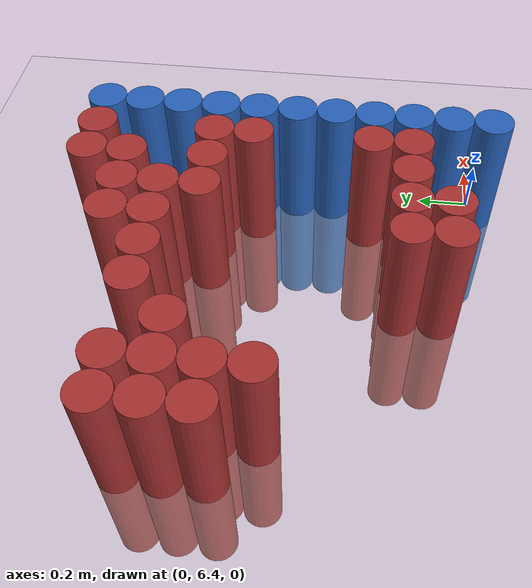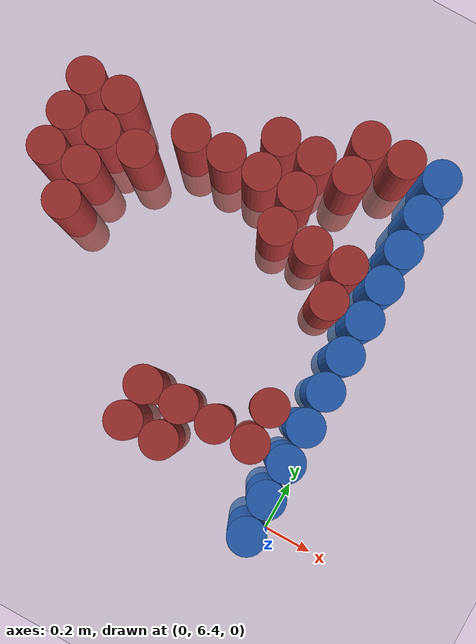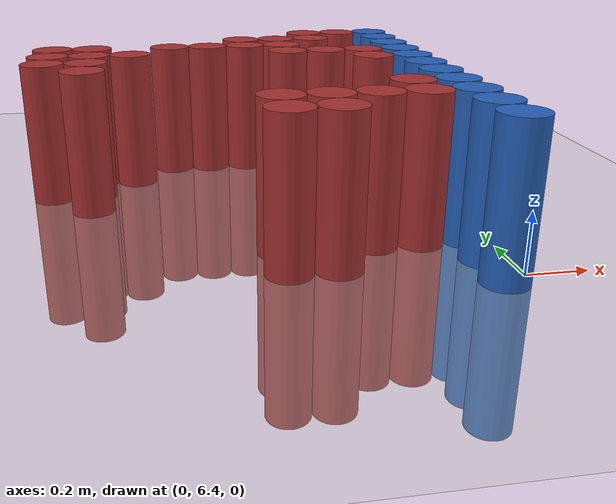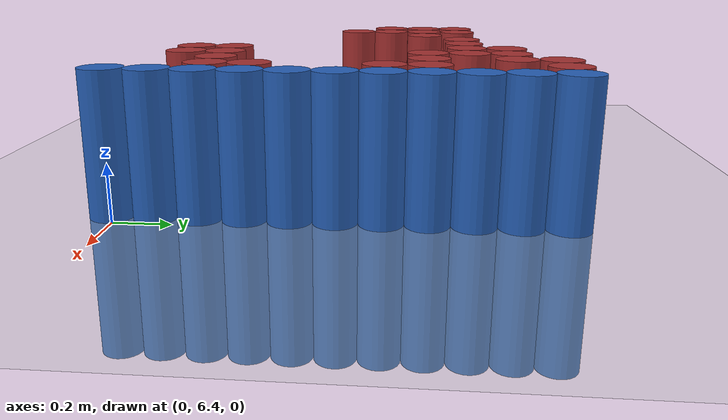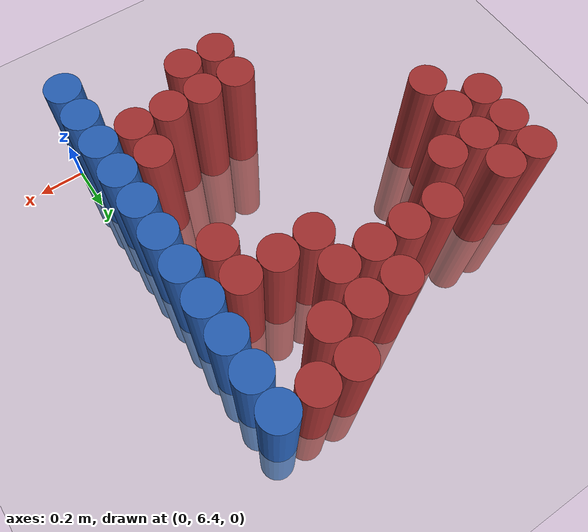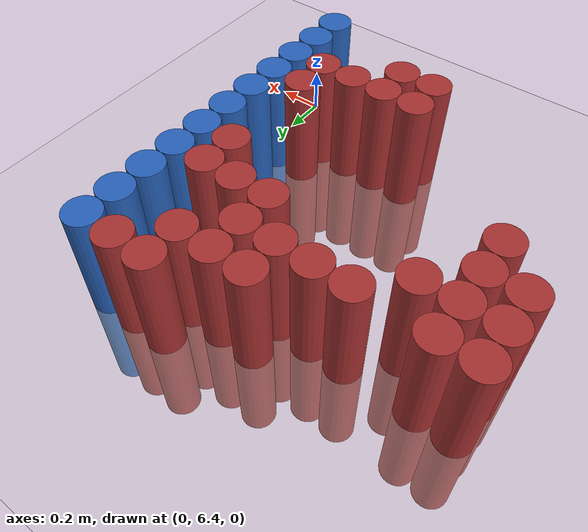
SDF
<sdf version="1.6">
 <world name="default">
  <model name="ground_plane">
   <static>1</static>
   <link name="link">
    <collision name="collision">
     <geometry><plane><normal>0 0 1</normal><size>100 100</size></plane></geometry>
     <surface><friction><ode><mu>100</mu><mu2>50</mu2></ode></friction></surface>
    </collision>
    <visual name="visual">
     <cast_shadows>0</cast_shadows>
     <geometry><plane><normal>0 0 1</normal><size>100 100</size></plane></geometry>
     <material>
      <script><uri>file://media/materials/scripts/gazebo.material</uri><name>Gazebo/Grey</name></script>
     </material>
    </visual>
   </link>
  </model>
  <model name="unit_cylinder_223">
   <static>1</static>
   <pose>-1.425000 7.275000 0.000000 0.000000 0.000000 0.000000</pose>
   <link name="link">
    <inertial>
     <mass>1</mass>
     <inertia><ixx>0.145833</ixx><ixy>0</ixy><ixz>0</ixz><iyy>0.145833</iyy><iyz>0</iyz><izz>0.125</izz></inertia>
    </inertial>
    <collision name="collision">
     <geometry><cylinder><radius>0.075000</radius><length>1</length></cylinder></geometry>
    </collision>
    <visual name="visual">
     <geometry><cylinder><radius>0.075000</radius><length>1</length></cylinder></geometry>
     <material>
      <ambient>0.648000 0.192000 0.192000 1</ambient>
      <diffuse>0.648000 0.192000 0.192000 1</diffuse>
     </material>
     <material>
      <script><name>Gazebo/Grey</name><uri>file://media/materials/scripts/gazebo.material</uri></script>
     </material>
    </visual>
    <sensor name="sensor_contact" type="contact"><contact><collision>collision</collision></contact></sensor>
   </link>
   <plugin filename="gz-sim-touchplugin-system" name="gz::sim::systems::TouchPlugin">
    <target>robot</target>
    <namespace>robot</namespace>
    <time>0.001</time>
    <enabled>true</enabled>
   </plugin>
  </model>
  <model name="unit_cylinder_224">
   <static>1</static>
   <pose>-1.425000 7.425000 0.000000 0.000000 0.000000 0.000000</pose>
   <link name="link">
    <inertial>
     <mass>1</mass>
     <inertia><ixx>0.145833</ixx><ixy>0</ixy><ixz>0</ixz><iyy>0.145833</iyy><iyz>0</iyz><izz>0.125</izz></inertia>
    </inertial>
    <collision name="collision">
     <geometry><cylinder><radius>0.075000</radius><length>1</length></cylinder></geometry>
    </collision>
    <visual name="visual">
     <geometry><cylinder><radius>0.075000</radius><length>1</length></cylinder></geometry>
     <material>
      <ambient>0.648000 0.192000 0.192000 1</ambient>
      <diffuse>0.648000 0.192000 0.192000 1</diffuse>
     </material>
     <material>
      <script><name>Gazebo/Grey</name><uri>file://media/materials/scripts/gazebo.material</uri></script>
     </material>
    </visual>
    <sensor name="sensor_contact" type="contact"><contact><collision>collision</collision></contact></sensor>
   </link>
   <plugin filename="gz-sim-touchplugin-system" name="gz::sim::systems::TouchPlugin">
    <target>robot</target>
    <namespace>robot</namespace>
    <time>0.001</time>
    <enabled>true</enabled>
   </plugin>
  </model>
  <model name="unit_cylinder_225">
   <static>1</static>
   <pose>-1.425000 7.575000 0.000000 0.000000 0.000000 0.000000</pose>
   <link name="link">
    <inertial>
     <mass>1</mass>
     <inertia><ixx>0.145833</ixx><ixy>0</ixy><ixz>0</ixz><iyy>0.145833</iyy><iyz>0</iyz><izz>0.125</izz></inertia>
    </inertial>
    <collision name="collision">
     <geometry><cylinder><radius>0.075000</radius><length>1</length></cylinder></geometry>
    </collision>
    <visual name="visual">
     <geometry><cylinder><radius>0.075000</radius><length>1</length></cylinder></geometry>
     <material>
      <ambient>0.648000 0.192000 0.192000 1</ambient>
      <diffuse>0.648000 0.192000 0.192000 1</diffuse>
     </material>
     <material>
      <script><name>Gazebo/Grey</name><uri>file://media/materials/scripts/gazebo.material</uri></script>
     </material>
    </visual>
    <sensor name="sensor_contact" type="contact"><contact><collision>collision</collision></contact></sensor>
   </link>
   <plugin filename="gz-sim-touchplugin-system" name="gz::sim::systems::TouchPlugin">
    <target>robot</target>
    <namespace>robot</namespace>
    <time>0.001</time>
    <enabled>true</enabled>
   </plugin>
  </model>
  <model name="unit_cylinder_229">
   <static>1</static>
   <pose>-1.275000 7.125000 0.000000 0.000000 0.000000 0.000000</pose>
   <link name="link">
    <inertial>
     <mass>1</mass>
     <inertia><ixx>0.145833</ixx><ixy>0</ixy><ixz>0</ixz><iyy>0.145833</iyy><iyz>0</iyz><izz>0.125</izz></inertia>
    </inertial>
    <collision name="collision">
     <geometry><cylinder><radius>0.075000</radius><length>1</length></cylinder></geometry>
    </collision>
    <visual name="visual">
     <geometry><cylinder><radius>0.075000</radius><length>1</length></cylinder></geometry>
     <material>
      <ambient>0.648000 0.192000 0.192000 1</ambient>
      <diffuse>0.648000 0.192000 0.192000 1</diffuse>
     </material>
     <material>
      <script><name>Gazebo/Grey</name><uri>file://media/materials/scripts/gazebo.material</uri></script>
     </material>
    </visual>
    <sensor name="sensor_contact" type="contact"><contact><collision>collision</collision></contact></sensor>
   </link>
   <plugin filename="gz-sim-touchplugin-system" name="gz::sim::systems::TouchPlugin">
    <target>robot</target>
    <namespace>robot</namespace>
    <time>0.001</time>
    <enabled>true</enabled>
   </plugin>
  </model>
  <model name="unit_cylinder_230">
   <static>1</static>
   <pose>-1.275000 7.275000 0.000000 0.000000 0.000000 0.000000</pose>
   <link name="link">
    <inertial>
     <mass>1</mass>
     <inertia><ixx>0.145833</ixx><ixy>0</ixy><ixz>0</ixz><iyy>0.145833</iyy><iyz>0</iyz><izz>0.125</izz></inertia>
    </inertial>
    <collision name="collision">
     <geometry><cylinder><radius>0.075000</radius><length>1</length></cylinder></geometry>
    </collision>
    <visual name="visual">
     <geometry><cylinder><radius>0.075000</radius><length>1</length></cylinder></geometry>
     <material>
      <ambient>0.648000 0.192000 0.192000 1</ambient>
      <diffuse>0.648000 0.192000 0.192000 1</diffuse>
     </material>
     <material>
      <script><name>Gazebo/Grey</name><uri>file://media/materials/scripts/gazebo.material</uri></script>
     </material>
    </visual>
    <sensor name="sensor_contact" type="contact"><contact><collision>collision</collision></contact></sensor>
   </link>
   <plugin filename="gz-sim-touchplugin-system" name="gz::sim::systems::TouchPlugin">
    <target>robot</target>
    <namespace>robot</namespace>
    <time>0.001</time>
    <enabled>true</enabled>
   </plugin>
  </model>
  <model name="unit_cylinder_231">
   <static>1</static>
   <pose>-1.275000 7.425000 0.000000 0.000000 0.000000 0.000000</pose>
   <link name="link">
    <inertial>
     <mass>1</mass>
     <inertia><ixx>0.145833</ixx><ixy>0</ixy><ixz>0</ixz><iyy>0.145833</iyy><iyz>0</iyz><izz>0.125</izz></inertia>
    </inertial>
    <collision name="collision">
     <geometry><cylinder><radius>0.075000</radius><length>1</length></cylinder></geometry>
    </collision>
    <visual name="visual">
     <geometry><cylinder><radius>0.075000</radius><length>1</length></cylinder></geometry>
     <material>
      <ambient>0.648000 0.192000 0.192000 1</ambient>
      <diffuse>0.648000 0.192000 0.192000 1</diffuse>
     </material>
     <material>
      <script><name>Gazebo/Grey</name><uri>file://media/materials/scripts/gazebo.material</uri></script>
     </material>
    </visual>
    <sensor name="sensor_contact" type="contact"><contact><collision>collision</collision></contact></sensor>
   </link>
   <plugin filename="gz-sim-touchplugin-system" name="gz::sim::systems::TouchPlugin">
    <target>robot</target>
    <namespace>robot</namespace>
    <time>0.001</time>
    <enabled>true</enabled>
   </plugin>
  </model>
  <model name="unit_cylinder_232">
   <static>1</static>
   <pose>-1.275000 7.575000 0.000000 0.000000 0.000000 0.000000</pose>
   <link name="link">
    <inertial>
     <mass>1</mass>
     <inertia><ixx>0.145833</ixx><ixy>0</ixy><ixz>0</ixz><iyy>0.145833</iyy><iyz>0</iyz><izz>0.125</izz></inertia>
    </inertial>
    <collision name="collision">
     <geometry><cylinder><radius>0.075000</radius><length>1</length></cylinder></geometry>
    </collision>
    <visual name="visual">
     <geometry><cylinder><radius>0.075000</radius><length>1</length></cylinder></geometry>
     <material>
      <ambient>0.648000 0.192000 0.192000 1</ambient>
      <diffuse>0.648000 0.192000 0.192000 1</diffuse>
     </material>
     <material>
      <script><name>Gazebo/Grey</name><uri>file://media/materials/scripts/gazebo.material</uri></script>
     </material>
    </visual>
    <sensor name="sensor_contact" type="contact"><contact><collision>collision</collision></contact></sensor>
   </link>
   <plugin filename="gz-sim-touchplugin-system" name="gz::sim::systems::TouchPlugin">
    <target>robot</target>
    <namespace>robot</namespace>
    <time>0.001</time>
    <enabled>true</enabled>
   </plugin>
  </model>
  <model name="unit_cylinder_233">
   <static>1</static>
   <pose>-1.125000 7.425000 0.000000 0.000000 0.000000 0.000000</pose>
   <link name="link">
    <inertial>
     <mass>1</mass>
     <inertia><ixx>0.145833</ixx><ixy>0</ixy><ixz>0</ixz><iyy>0.145833</iyy><iyz>0</iyz><izz>0.125</izz></inertia>
    </inertial>
    <collision name="collision">
     <geometry><cylinder><radius>0.075000</radius><length>1</length></cylinder></geometry>
    </collision>
    <visual name="visual">
     <geometry><cylinder><radius>0.075000</radius><length>1</length></cylinder></geometry>
     <material>
      <ambient>0.648000 0.192000 0.192000 1</ambient>
      <diffuse>0.648000 0.192000 0.192000 1</diffuse>
     </material>
     <material>
      <script><name>Gazebo/Grey</name><uri>file://media/materials/scripts/gazebo.material</uri></script>
     </material>
    </visual>
    <sensor name="sensor_contact" type="contact"><contact><collision>collision</collision></contact></sensor>
   </link>
   <plugin filename="gz-sim-touchplugin-system" name="gz::sim::systems::TouchPlugin">
    <target>robot</target>
    <namespace>robot</namespace>
    <time>0.001</time>
    <enabled>true</enabled>
   </plugin>
  </model>
  <model name="unit_cylinder_235">
   <static>1</static>
   <pose>-0.975000 7.575000 0.000000 0.000000 0.000000 0.000000</pose>
   <link name="link">
    <inertial>
     <mass>1</mass>
     <inertia><ixx>0.145833</ixx><ixy>0</ixy><ixz>0</ixz><iyy>0.145833</iyy><iyz>0</iyz><izz>0.125</izz></inertia>
    </inertial>
    <collision name="collision">
     <geometry><cylinder><radius>0.075000</radius><length>1</length></cylinder></geometry>
    </collision>
    <visual name="visual">
     <geometry><cylinder><radius>0.075000</radius><length>1</length></cylinder></geometry>
     <material>
      <ambient>0.648000 0.192000 0.192000 1</ambient>
      <diffuse>0.648000 0.192000 0.192000 1</diffuse>
     </material>
     <material>
      <script><name>Gazebo/Grey</name><uri>file://media/materials/scripts/gazebo.material</uri></script>
     </material>
    </visual>
    <sensor name="sensor_contact" type="contact"><contact><collision>collision</collision></contact></sensor>
   </link>
   <plugin filename="gz-sim-touchplugin-system" name="gz::sim::systems::TouchPlugin">
    <target>robot</target>
    <namespace>robot</namespace>
    <time>0.001</time>
    <enabled>true</enabled>
   </plugin>
  </model>
  <model name="unit_cylinder_238">
   <static>1</static>
   <pose>-0.825000 7.575000 0.000000 0.000000 0.000000 0.000000</pose>
   <link name="link">
    <inertial>
     <mass>1</mass>
     <inertia><ixx>0.145833</ixx><ixy>0</ixy><ixz>0</ixz><iyy>0.145833</iyy><iyz>0</iyz><izz>0.125</izz></inertia>
    </inertial>
    <collision name="collision">
     <geometry><cylinder><radius>0.075000</radius><length>1</length></cylinder></geometry>
    </collision>
    <visual name="visual">
     <geometry><cylinder><radius>0.075000</radius><length>1</length></cylinder></geometry>
     <material>
      <ambient>0.648000 0.192000 0.192000 1</ambient>
      <diffuse>0.648000 0.192000 0.192000 1</diffuse>
     </material>
     <material>
      <script><name>Gazebo/Grey</name><uri>file://media/materials/scripts/gazebo.material</uri></script>
     </material>
    </visual>
    <sensor name="sensor_contact" type="contact"><contact><collision>collision</collision></contact></sensor>
   </link>
   <plugin filename="gz-sim-touchplugin-system" name="gz::sim::systems::TouchPlugin">
    <target>robot</target>
    <namespace>robot</namespace>
    <time>0.001</time>
    <enabled>true</enabled>
   </plugin>
  </model>
  <model name="unit_cylinder_239">
   <static>1</static>
   <pose>-0.675000 6.525000 0.000000 0.000000 0.000000 0.000000</pose>
   <link name="link">
    <inertial>
     <mass>1</mass>
     <inertia><ixx>0.145833</ixx><ixy>0</ixy><ixz>0</ixz><iyy>0.145833</iyy><iyz>0</iyz><izz>0.125</izz></inertia>
    </inertial>
    <collision name="collision">
     <geometry><cylinder><radius>0.075000</radius><length>1</length></cylinder></geometry>
    </collision>
    <visual name="visual">
     <geometry><cylinder><radius>0.075000</radius><length>1</length></cylinder></geometry>
     <material>
      <ambient>0.648000 0.192000 0.192000 1</ambient>
      <diffuse>0.648000 0.192000 0.192000 1</diffuse>
     </material>
     <material>
      <script><name>Gazebo/Grey</name><uri>file://media/materials/scripts/gazebo.material</uri></script>
     </material>
    </visual>
    <sensor name="sensor_contact" type="contact"><contact><collision>collision</collision></contact></sensor>
   </link>
   <plugin filename="gz-sim-touchplugin-system" name="gz::sim::systems::TouchPlugin">
    <target>robot</target>
    <namespace>robot</namespace>
    <time>0.001</time>
    <enabled>true</enabled>
   </plugin>
  </model>
  <model name="unit_cylinder_240">
   <static>1</static>
   <pose>-0.675000 6.675000 0.000000 0.000000 0.000000 0.000000</pose>
   <link name="link">
    <inertial>
     <mass>1</mass>
     <inertia><ixx>0.145833</ixx><ixy>0</ixy><ixz>0</ixz><iyy>0.145833</iyy><iyz>0</iyz><izz>0.125</izz></inertia>
    </inertial>
    <collision name="collision">
     <geometry><cylinder><radius>0.075000</radius><length>1</length></cylinder></geometry>
    </collision>
    <visual name="visual">
     <geometry><cylinder><radius>0.075000</radius><length>1</length></cylinder></geometry>
     <material>
      <ambient>0.648000 0.192000 0.192000 1</ambient>
      <diffuse>0.648000 0.192000 0.192000 1</diffuse>
     </material>
     <material>
      <script><name>Gazebo/Grey</name><uri>file://media/materials/scripts/gazebo.material</uri></script>
     </material>
    </visual>
    <sensor name="sensor_contact" type="contact"><contact><collision>collision</collision></contact></sensor>
   </link>
   <plugin filename="gz-sim-touchplugin-system" name="gz::sim::systems::TouchPlugin">
    <target>robot</target>
    <namespace>robot</namespace>
    <time>0.001</time>
    <enabled>true</enabled>
   </plugin>
  </model>
  <model name="unit_cylinder_241">
   <static>1</static>
   <pose>-0.675000 7.575000 0.000000 0.000000 0.000000 0.000000</pose>
   <link name="link">
    <inertial>
     <mass>1</mass>
     <inertia><ixx>0.145833</ixx><ixy>0</ixy><ixz>0</ixz><iyy>0.145833</iyy><iyz>0</iyz><izz>0.125</izz></inertia>
    </inertial>
    <collision name="collision">
     <geometry><cylinder><radius>0.075000</radius><length>1</length></cylinder></geometry>
    </collision>
    <visual name="visual">
     <geometry><cylinder><radius>0.075000</radius><length>1</length></cylinder></geometry>
     <material>
      <ambient>0.648000 0.192000 0.192000 1</ambient>
      <diffuse>0.648000 0.192000 0.192000 1</diffuse>
     </material>
     <material>
      <script><name>Gazebo/Grey</name><uri>file://media/materials/scripts/gazebo.material</uri></script>
     </material>
    </visual>
    <sensor name="sensor_contact" type="contact"><contact><collision>collision</collision></contact></sensor>
   </link>
   <plugin filename="gz-sim-touchplugin-system" name="gz::sim::systems::TouchPlugin">
    <target>robot</target>
    <namespace>robot</namespace>
    <time>0.001</time>
    <enabled>true</enabled>
   </plugin>
  </model>
  <model name="unit_cylinder_242">
   <static>1</static>
   <pose>-0.675000 7.725000 0.000000 0.000000 0.000000 0.000000</pose>
   <link name="link">
    <inertial>
     <mass>1</mass>
     <inertia><ixx>0.145833</ixx><ixy>0</ixy><ixz>0</ixz><iyy>0.145833</iyy><iyz>0</iyz><izz>0.125</izz></inertia>
    </inertial>
    <collision name="collision">
     <geometry><cylinder><radius>0.075000</radius><length>1</length></cylinder></geometry>
    </collision>
    <visual name="visual">
     <geometry><cylinder><radius>0.075000</radius><length>1</length></cylinder></geometry>
     <material>
      <ambient>0.648000 0.192000 0.192000 1</ambient>
      <diffuse>0.648000 0.192000 0.192000 1</diffuse>
     </material>
     <material>
      <script><name>Gazebo/Grey</name><uri>file://media/materials/scripts/gazebo.material</uri></script>
     </material>
    </visual>
    <sensor name="sensor_contact" type="contact"><contact><collision>collision</collision></contact></sensor>
   </link>
   <plugin filename="gz-sim-touchplugin-system" name="gz::sim::systems::TouchPlugin">
    <target>robot</target>
    <namespace>robot</namespace>
    <time>0.001</time>
    <enabled>true</enabled>
   </plugin>
  </model>
  <model name="unit_cylinder_245">
   <static>1</static>
   <pose>-0.525000 6.525000 0.000000 0.000000 0.000000 0.000000</pose>
   <link name="link">
    <inertial>
     <mass>1</mass>
     <inertia><ixx>0.145833</ixx><ixy>0</ixy><ixz>0</ixz><iyy>0.145833</iyy><iyz>0</iyz><izz>0.125</izz></inertia>
    </inertial>
    <collision name="collision">
     <geometry><cylinder><radius>0.075000</radius><length>1</length></cylinder></geometry>
    </collision>
    <visual name="visual">
     <geometry><cylinder><radius>0.075000</radius><length>1</length></cylinder></geometry>
     <material>
      <ambient>0.648000 0.192000 0.192000 1</ambient>
      <diffuse>0.648000 0.192000 0.192000 1</diffuse>
     </material>
     <material>
      <script><name>Gazebo/Grey</name><uri>file://media/materials/scripts/gazebo.material</uri></script>
     </material>
    </visual>
    <sensor name="sensor_contact" type="contact"><contact><collision>collision</collision></contact></sensor>
   </link>
   <plugin filename="gz-sim-touchplugin-system" name="gz::sim::systems::TouchPlugin">
    <target>robot</target>
    <namespace>robot</namespace>
    <time>0.001</time>
    <enabled>true</enabled>
   </plugin>
  </model>
  <model name="unit_cylinder_246">
   <static>1</static>
   <pose>-0.525000 6.675000 0.000000 0.000000 0.000000 0.000000</pose>
   <link name="link">
    <inertial>
     <mass>1</mass>
     <inertia><ixx>0.145833</ixx><ixy>0</ixy><ixz>0</ixz><iyy>0.145833</iyy><iyz>0</iyz><izz>0.125</izz></inertia>
    </inertial>
    <collision name="collision">
     <geometry><cylinder><radius>0.075000</radius><length>1</length></cylinder></geometry>
    </collision>
    <visual name="visual">
     <geometry><cylinder><radius>0.075000</radius><length>1</length></cylinder></geometry>
     <material>
      <ambient>0.648000 0.192000 0.192000 1</ambient>
      <diffuse>0.648000 0.192000 0.192000 1</diffuse>
     </material>
     <material>
      <script><name>Gazebo/Grey</name><uri>file://media/materials/scripts/gazebo.material</uri></script>
     </material>
    </visual>
    <sensor name="sensor_contact" type="contact"><contact><collision>collision</collision></contact></sensor>
   </link>
   <plugin filename="gz-sim-touchplugin-system" name="gz::sim::systems::TouchPlugin">
    <target>robot</target>
    <namespace>robot</namespace>
    <time>0.001</time>
    <enabled>true</enabled>
   </plugin>
  </model>
  <model name="unit_cylinder_247">
   <static>1</static>
   <pose>-0.525000 7.425000 0.000000 0.000000 0.000000 0.000000</pose>
   <link name="link">
    <inertial>
     <mass>1</mass>
     <inertia><ixx>0.145833</ixx><ixy>0</ixy><ixz>0</ixz><iyy>0.145833</iyy><iyz>0</iyz><izz>0.125</izz></inertia>
    </inertial>
    <collision name="collision">
     <geometry><cylinder><radius>0.075000</radius><length>1</length></cylinder></geometry>
    </collision>
    <visual name="visual">
     <geometry><cylinder><radius>0.075000</radius><length>1</length></cylinder></geometry>
     <material>
      <ambient>0.648000 0.192000 0.192000 1</ambient>
      <diffuse>0.648000 0.192000 0.192000 1</diffuse>
     </material>
     <material>
      <script><name>Gazebo/Grey</name><uri>file://media/materials/scripts/gazebo.material</uri></script>
     </material>
    </visual>
    <sensor name="sensor_contact" type="contact"><contact><collision>collision</collision></contact></sensor>
   </link>
   <plugin filename="gz-sim-touchplugin-system" name="gz::sim::systems::TouchPlugin">
    <target>robot</target>
    <namespace>robot</namespace>
    <time>0.001</time>
    <enabled>true</enabled>
   </plugin>
  </model>
  <model name="unit_cylinder_248">
   <static>1</static>
   <pose>-0.525000 7.575000 0.000000 0.000000 0.000000 0.000000</pose>
   <link name="link">
    <inertial>
     <mass>1</mass>
     <inertia><ixx>0.145833</ixx><ixy>0</ixy><ixz>0</ixz><iyy>0.145833</iyy><iyz>0</iyz><izz>0.125</izz></inertia>
    </inertial>
    <collision name="collision">
     <geometry><cylinder><radius>0.075000</radius><length>1</length></cylinder></geometry>
    </collision>
    <visual name="visual">
     <geometry><cylinder><radius>0.075000</radius><length>1</length></cylinder></geometry>
     <material>
      <ambient>0.648000 0.192000 0.192000 1</ambient>
      <diffuse>0.648000 0.192000 0.192000 1</diffuse>
     </material>
     <material>
      <script><name>Gazebo/Grey</name><uri>file://media/materials/scripts/gazebo.material</uri></script>
     </material>
    </visual>
    <sensor name="sensor_contact" type="contact"><contact><collision>collision</collision></contact></sensor>
   </link>
   <plugin filename="gz-sim-touchplugin-system" name="gz::sim::systems::TouchPlugin">
    <target>robot</target>
    <namespace>robot</namespace>
    <time>0.001</time>
    <enabled>true</enabled>
   </plugin>
  </model>
  <model name="unit_cylinder_249">
   <static>1</static>
   <pose>-0.525000 7.725000 0.000000 0.000000 0.000000 0.000000</pose>
   <link name="link">
    <inertial>
     <mass>1</mass>
     <inertia><ixx>0.145833</ixx><ixy>0</ixy><ixz>0</ixz><iyy>0.145833</iyy><iyz>0</iyz><izz>0.125</izz></inertia>
    </inertial>
    <collision name="collision">
     <geometry><cylinder><radius>0.075000</radius><length>1</length></cylinder></geometry>
    </collision>
    <visual name="visual">
     <geometry><cylinder><radius>0.075000</radius><length>1</length></cylinder></geometry>
     <material>
      <ambient>0.648000 0.192000 0.192000 1</ambient>
      <diffuse>0.648000 0.192000 0.192000 1</diffuse>
     </material>
     <material>
      <script><name>Gazebo/Grey</name><uri>file://media/materials/scripts/gazebo.material</uri></script>
     </material>
    </visual>
    <sensor name="sensor_contact" type="contact"><contact><collision>collision</collision></contact></sensor>
   </link>
   <plugin filename="gz-sim-touchplugin-system" name="gz::sim::systems::TouchPlugin">
    <target>robot</target>
    <namespace>robot</namespace>
    <time>0.001</time>
    <enabled>true</enabled>
   </plugin>
  </model>
  <model name="unit_cylinder_264">
   <static>1</static>
   <pose>-0.375000 6.675000 0.000000 0.000000 0.000000 0.000000</pose>
   <link name="link">
    <inertial>
     <mass>1</mass>
     <inertia><ixx>0.145833</ixx><ixy>0</ixy><ixz>0</ixz><iyy>0.145833</iyy><iyz>0</iyz><izz>0.125</izz></inertia>
    </inertial>
    <collision name="collision">
     <geometry><cylinder><radius>0.075000</radius><length>1</length></cylinder></geometry>
    </collision>
    <visual name="visual">
     <geometry><cylinder><radius>0.075000</radius><length>1</length></cylinder></geometry>
     <material>
      <ambient>0.648000 0.192000 0.192000 1</ambient>
      <diffuse>0.648000 0.192000 0.192000 1</diffuse>
     </material>
     <material>
      <script><name>Gazebo/Grey</name><uri>file://media/materials/scripts/gazebo.material</uri></script>
     </material>
    </visual>
    <sensor name="sensor_contact" type="contact"><contact><collision>collision</collision></contact></sensor>
   </link>
   <plugin filename="gz-sim-touchplugin-system" name="gz::sim::systems::TouchPlugin">
    <target>robot</target>
    <namespace>robot</namespace>
    <time>0.001</time>
    <enabled>true</enabled>
   </plugin>
  </model>
  <model name="unit_cylinder_265">
   <static>1</static>
   <pose>-0.375000 7.425000 0.000000 0.000000 0.000000 0.000000</pose>
   <link name="link">
    <inertial>
     <mass>1</mass>
     <inertia><ixx>0.145833</ixx><ixy>0</ixy><ixz>0</ixz><iyy>0.145833</iyy><iyz>0</iyz><izz>0.125</izz></inertia>
    </inertial>
    <collision name="collision">
     <geometry><cylinder><radius>0.075000</radius><length>1</length></cylinder></geometry>
    </collision>
    <visual name="visual">
     <geometry><cylinder><radius>0.075000</radius><length>1</length></cylinder></geometry>
     <material>
      <ambient>0.648000 0.192000 0.192000 1</ambient>
      <diffuse>0.648000 0.192000 0.192000 1</diffuse>
     </material>
     <material>
      <script><name>Gazebo/Grey</name><uri>file://media/materials/scripts/gazebo.material</uri></script>
     </material>
    </visual>
    <sensor name="sensor_contact" type="contact"><contact><collision>collision</collision></contact></sensor>
   </link>
   <plugin filename="gz-sim-touchplugin-system" name="gz::sim::systems::TouchPlugin">
    <target>robot</target>
    <namespace>robot</namespace>
    <time>0.001</time>
    <enabled>true</enabled>
   </plugin>
  </model>
  <model name="unit_cylinder_266">
   <static>1</static>
   <pose>-0.375000 7.725000 0.000000 0.000000 0.000000 0.000000</pose>
   <link name="link">
    <inertial>
     <mass>1</mass>
     <inertia><ixx>0.145833</ixx><ixy>0</ixy><ixz>0</ixz><iyy>0.145833</iyy><iyz>0</iyz><izz>0.125</izz></inertia>
    </inertial>
    <collision name="collision">
     <geometry><cylinder><radius>0.075000</radius><length>1</length></cylinder></geometry>
    </collision>
    <visual name="visual">
     <geometry><cylinder><radius>0.075000</radius><length>1</length></cylinder></geometry>
     <material>
      <ambient>0.648000 0.192000 0.192000 1</ambient>
      <diffuse>0.648000 0.192000 0.192000 1</diffuse>
     </material>
     <material>
      <script><name>Gazebo/Grey</name><uri>file://media/materials/scripts/gazebo.material</uri></script>
     </material>
    </visual>
    <sensor name="sensor_contact" type="contact"><contact><collision>collision</collision></contact></sensor>
   </link>
   <plugin filename="gz-sim-touchplugin-system" name="gz::sim::systems::TouchPlugin">
    <target>robot</target>
    <namespace>robot</namespace>
    <time>0.001</time>
    <enabled>true</enabled>
   </plugin>
  </model>
  <model name="unit_cylinder_267">
   <static>1</static>
   <pose>-0.375000 7.875000 0.000000 0.000000 0.000000 0.000000</pose>
   <link name="link">
    <inertial>
     <mass>1</mass>
     <inertia><ixx>0.145833</ixx><ixy>0</ixy><ixz>0</ixz><iyy>0.145833</iyy><iyz>0</iyz><izz>0.125</izz></inertia>
    </inertial>
    <collision name="collision">
     <geometry><cylinder><radius>0.075000</radius><length>1</length></cylinder></geometry>
    </collision>
    <visual name="visual">
     <geometry><cylinder><radius>0.075000</radius><length>1</length></cylinder></geometry>
     <material>
      <ambient>0.648000 0.192000 0.192000 1</ambient>
      <diffuse>0.648000 0.192000 0.192000 1</diffuse>
     </material>
     <material>
      <script><name>Gazebo/Grey</name><uri>file://media/materials/scripts/gazebo.material</uri></script>
     </material>
    </visual>
    <sensor name="sensor_contact" type="contact"><contact><collision>collision</collision></contact></sensor>
   </link>
   <plugin filename="gz-sim-touchplugin-system" name="gz::sim::systems::TouchPlugin">
    <target>robot</target>
    <namespace>robot</namespace>
    <time>0.001</time>
    <enabled>true</enabled>
   </plugin>
  </model>
  <model name="unit_cylinder_276">
   <static>1</static>
   <pose>-0.225000 6.675000 0.000000 0.000000 0.000000 0.000000</pose>
   <link name="link">
    <inertial>
     <mass>1</mass>
     <inertia><ixx>0.145833</ixx><ixy>0</ixy><ixz>0</ixz><iyy>0.145833</iyy><iyz>0</iyz><izz>0.125</izz></inertia>
    </inertial>
    <collision name="collision">
     <geometry><cylinder><radius>0.075000</radius><length>1</length></cylinder></geometry>
    </collision>
    <visual name="visual">
     <geometry><cylinder><radius>0.075000</radius><length>1</length></cylinder></geometry>
     <material>
      <ambient>0.648000 0.192000 0.192000 1</ambient>
      <diffuse>0.648000 0.192000 0.192000 1</diffuse>
     </material>
     <material>
      <script><name>Gazebo/Grey</name><uri>file://media/materials/scripts/gazebo.material</uri></script>
     </material>
    </visual>
    <sensor name="sensor_contact" type="contact"><contact><collision>collision</collision></contact></sensor>
   </link>
   <plugin filename="gz-sim-touchplugin-system" name="gz::sim::systems::TouchPlugin">
    <target>robot</target>
    <namespace>robot</namespace>
    <time>0.001</time>
    <enabled>true</enabled>
   </plugin>
  </model>
  <model name="unit_cylinder_277">
   <static>1</static>
   <pose>-0.225000 6.825000 0.000000 0.000000 0.000000 0.000000</pose>
   <link name="link">
    <inertial>
     <mass>1</mass>
     <inertia><ixx>0.145833</ixx><ixy>0</ixy><ixz>0</ixz><iyy>0.145833</iyy><iyz>0</iyz><izz>0.125</izz></inertia>
    </inertial>
    <collision name="collision">
     <geometry><cylinder><radius>0.075000</radius><length>1</length></cylinder></geometry>
    </collision>
    <visual name="visual">
     <geometry><cylinder><radius>0.075000</radius><length>1</length></cylinder></geometry>
     <material>
      <ambient>0.648000 0.192000 0.192000 1</ambient>
      <diffuse>0.648000 0.192000 0.192000 1</diffuse>
     </material>
     <material>
      <script><name>Gazebo/Grey</name><uri>file://media/materials/scripts/gazebo.material</uri></script>
     </material>
    </visual>
    <sensor name="sensor_contact" type="contact"><contact><collision>collision</collision></contact></sensor>
   </link>
   <plugin filename="gz-sim-touchplugin-system" name="gz::sim::systems::TouchPlugin">
    <target>robot</target>
    <namespace>robot</namespace>
    <time>0.001</time>
    <enabled>true</enabled>
   </plugin>
  </model>
  <model name="unit_cylinder_278">
   <static>1</static>
   <pose>-0.225000 7.275000 0.000000 0.000000 0.000000 0.000000</pose>
   <link name="link">
    <inertial>
     <mass>1</mass>
     <inertia><ixx>0.145833</ixx><ixy>0</ixy><ixz>0</ixz><iyy>0.145833</iyy><iyz>0</iyz><izz>0.125</izz></inertia>
    </inertial>
    <collision name="collision">
     <geometry><cylinder><radius>0.075000</radius><length>1</length></cylinder></geometry>
    </collision>
    <visual name="visual">
     <geometry><cylinder><radius>0.075000</radius><length>1</length></cylinder></geometry>
     <material>
      <ambient>0.648000 0.192000 0.192000 1</ambient>
      <diffuse>0.648000 0.192000 0.192000 1</diffuse>
     </material>
     <material>
      <script><name>Gazebo/Grey</name><uri>file://media/materials/scripts/gazebo.material</uri></script>
     </material>
    </visual>
    <sensor name="sensor_contact" type="contact"><contact><collision>collision</collision></contact></sensor>
   </link>
   <plugin filename="gz-sim-touchplugin-system" name="gz::sim::systems::TouchPlugin">
    <target>robot</target>
    <namespace>robot</namespace>
    <time>0.001</time>
    <enabled>true</enabled>
   </plugin>
  </model>
  <model name="unit_cylinder_279">
   <static>1</static>
   <pose>-0.225000 7.425000 0.000000 0.000000 0.000000 0.000000</pose>
   <link name="link">
    <inertial>
     <mass>1</mass>
     <inertia><ixx>0.145833</ixx><ixy>0</ixy><ixz>0</ixz><iyy>0.145833</iyy><iyz>0</iyz><izz>0.125</izz></inertia>
    </inertial>
    <collision name="collision">
     <geometry><cylinder><radius>0.075000</radius><length>1</length></cylinder></geometry>
    </collision>
    <visual name="visual">
     <geometry><cylinder><radius>0.075000</radius><length>1</length></cylinder></geometry>
     <material>
      <ambient>0.648000 0.192000 0.192000 1</ambient>
      <diffuse>0.648000 0.192000 0.192000 1</diffuse>
     </material>
     <material>
      <script><name>Gazebo/Grey</name><uri>file://media/materials/scripts/gazebo.material</uri></script>
     </material>
    </visual>
    <sensor name="sensor_contact" type="contact"><contact><collision>collision</collision></contact></sensor>
   </link>
   <plugin filename="gz-sim-touchplugin-system" name="gz::sim::systems::TouchPlugin">
    <target>robot</target>
    <namespace>robot</namespace>
    <time>0.001</time>
    <enabled>true</enabled>
   </plugin>
  </model>
  <model name="unit_cylinder_280">
   <static>1</static>
   <pose>-0.225000 7.875000 0.000000 0.000000 0.000000 0.000000</pose>
   <link name="link">
    <inertial>
     <mass>1</mass>
     <inertia><ixx>0.145833</ixx><ixy>0</ixy><ixz>0</ixz><iyy>0.145833</iyy><iyz>0</iyz><izz>0.125</izz></inertia>
    </inertial>
    <collision name="collision">
     <geometry><cylinder><radius>0.075000</radius><length>1</length></cylinder></geometry>
    </collision>
    <visual name="visual">
     <geometry><cylinder><radius>0.075000</radius><length>1</length></cylinder></geometry>
     <material>
      <ambient>0.648000 0.192000 0.192000 1</ambient>
      <diffuse>0.648000 0.192000 0.192000 1</diffuse>
     </material>
     <material>
      <script><name>Gazebo/Grey</name><uri>file://media/materials/scripts/gazebo.material</uri></script>
     </material>
    </visual>
    <sensor name="sensor_contact" type="contact"><contact><collision>collision</collision></contact></sensor>
   </link>
   <plugin filename="gz-sim-touchplugin-system" name="gz::sim::systems::TouchPlugin">
    <target>robot</target>
    <namespace>robot</namespace>
    <time>0.001</time>
    <enabled>true</enabled>
   </plugin>
  </model>
  <model name="unit_cylinder_293">
   <static>1</static>
   <pose>-0.075000 6.375000 0.000000 0.000000 0.000000 0.000000</pose>
   <link name="link">
    <inertial>
     <mass>1</mass>
     <inertia><ixx>0.145833</ixx><ixy>0</ixy><ixz>0</ixz><iyy>0.145833</iyy><iyz>0</iyz><izz>0.125</izz></inertia>
    </inertial>
    <collision name="collision">
     <geometry><cylinder><radius>0.075000</radius><length>1</length></cylinder></geometry>
    </collision>
    <visual name="visual">
     <geometry><cylinder><radius>0.075000</radius><length>1</length></cylinder></geometry>
     <material>
      <ambient>0.152000 0.379000 0.720000 1</ambient>
      <diffuse>0.152000 0.379000 0.720000 1</diffuse>
     </material>
     <material>
      <script><name>Gazebo/Grey</name><uri>file://media/materials/scripts/gazebo.material</uri></script>
     </material>
    </visual>
    <sensor name="sensor_contact" type="contact"><contact><collision>collision</collision></contact></sensor>
   </link>
   <plugin filename="gz-sim-touchplugin-system" name="gz::sim::systems::TouchPlugin">
    <target>robot</target>
    <namespace>robot</namespace>
    <time>0.001</time>
    <enabled>true</enabled>
   </plugin>
  </model>
  <model name="unit_cylinder_294">
   <static>1</static>
   <pose>-0.075000 6.525000 0.000000 0.000000 0.000000 0.000000</pose>
   <link name="link">
    <inertial>
     <mass>1</mass>
     <inertia><ixx>0.145833</ixx><ixy>0</ixy><ixz>0</ixz><iyy>0.145833</iyy><iyz>0</iyz><izz>0.125</izz></inertia>
    </inertial>
    <collision name="collision">
     <geometry><cylinder><radius>0.075000</radius><length>1</length></cylinder></geometry>
    </collision>
    <visual name="visual">
     <geometry><cylinder><radius>0.075000</radius><length>1</length></cylinder></geometry>
     <material>
      <ambient>0.152000 0.379000 0.720000 1</ambient>
      <diffuse>0.152000 0.379000 0.720000 1</diffuse>
     </material>
     <material>
      <script><name>Gazebo/Grey</name><uri>file://media/materials/scripts/gazebo.material</uri></script>
     </material>
    </visual>
    <sensor name="sensor_contact" type="contact"><contact><collision>collision</collision></contact></sensor>
   </link>
   <plugin filename="gz-sim-touchplugin-system" name="gz::sim::systems::TouchPlugin">
    <target>robot</target>
    <namespace>robot</namespace>
    <time>0.001</time>
    <enabled>true</enabled>
   </plugin>
  </model>
  <model name="unit_cylinder_295">
   <static>1</static>
   <pose>-0.075000 6.675000 0.000000 0.000000 0.000000 0.000000</pose>
   <link name="link">
    <inertial>
     <mass>1</mass>
     <inertia><ixx>0.145833</ixx><ixy>0</ixy><ixz>0</ixz><iyy>0.145833</iyy><iyz>0</iyz><izz>0.125</izz></inertia>
    </inertial>
    <collision name="collision">
     <geometry><cylinder><radius>0.075000</radius><length>1</length></cylinder></geometry>
    </collision>
    <visual name="visual">
     <geometry><cylinder><radius>0.075000</radius><length>1</length></cylinder></geometry>
     <material>
      <ambient>0.152000 0.379000 0.720000 1</ambient>
      <diffuse>0.152000 0.379000 0.720000 1</diffuse>
     </material>
     <material>
      <script><name>Gazebo/Grey</name><uri>file://media/materials/scripts/gazebo.material</uri></script>
     </material>
    </visual>
    <sensor name="sensor_contact" type="contact"><contact><collision>collision</collision></contact></sensor>
   </link>
   <plugin filename="gz-sim-touchplugin-system" name="gz::sim::systems::TouchPlugin">
    <target>robot</target>
    <namespace>robot</namespace>
    <time>0.001</time>
    <enabled>true</enabled>
   </plugin>
  </model>
  <model name="unit_cylinder_296">
   <static>1</static>
   <pose>-0.075000 6.825000 0.000000 0.000000 0.000000 0.000000</pose>
   <link name="link">
    <inertial>
     <mass>1</mass>
     <inertia><ixx>0.145833</ixx><ixy>0</ixy><ixz>0</ixz><iyy>0.145833</iyy><iyz>0</iyz><izz>0.125</izz></inertia>
    </inertial>
    <collision name="collision">
     <geometry><cylinder><radius>0.075000</radius><length>1</length></cylinder></geometry>
    </collision>
    <visual name="visual">
     <geometry><cylinder><radius>0.075000</radius><length>1</length></cylinder></geometry>
     <material>
      <ambient>0.152000 0.379000 0.720000 1</ambient>
      <diffuse>0.152000 0.379000 0.720000 1</diffuse>
     </material>
     <material>
      <script><name>Gazebo/Grey</name><uri>file://media/materials/scripts/gazebo.material</uri></script>
     </material>
    </visual>
    <sensor name="sensor_contact" type="contact"><contact><collision>collision</collision></contact></sensor>
   </link>
   <plugin filename="gz-sim-touchplugin-system" name="gz::sim::systems::TouchPlugin">
    <target>robot</target>
    <namespace>robot</namespace>
    <time>0.001</time>
    <enabled>true</enabled>
   </plugin>
  </model>
  <model name="unit_cylinder_297">
   <static>1</static>
   <pose>-0.075000 6.975000 0.000000 0.000000 0.000000 0.000000</pose>
   <link name="link">
    <inertial>
     <mass>1</mass>
     <inertia><ixx>0.145833</ixx><ixy>0</ixy><ixz>0</ixz><iyy>0.145833</iyy><iyz>0</iyz><izz>0.125</izz></inertia>
    </inertial>
    <collision name="collision">
     <geometry><cylinder><radius>0.075000</radius><length>1</length></cylinder></geometry>
    </collision>
    <visual name="visual">
     <geometry><cylinder><radius>0.075000</radius><length>1</length></cylinder></geometry>
     <material>
      <ambient>0.152000 0.379000 0.720000 1</ambient>
      <diffuse>0.152000 0.379000 0.720000 1</diffuse>
     </material>
     <material>
      <script><name>Gazebo/Grey</name><uri>file://media/materials/scripts/gazebo.material</uri></script>
     </material>
    </visual>
    <sensor name="sensor_contact" type="contact"><contact><collision>collision</collision></contact></sensor>
   </link>
   <plugin filename="gz-sim-touchplugin-system" name="gz::sim::systems::TouchPlugin">
    <target>robot</target>
    <namespace>robot</namespace>
    <time>0.001</time>
    <enabled>true</enabled>
   </plugin>
  </model>
  <model name="unit_cylinder_298">
   <static>1</static>
   <pose>-0.075000 7.125000 0.000000 0.000000 0.000000 0.000000</pose>
   <link name="link">
    <inertial>
     <mass>1</mass>
     <inertia><ixx>0.145833</ixx><ixy>0</ixy><ixz>0</ixz><iyy>0.145833</iyy><iyz>0</iyz><izz>0.125</izz></inertia>
    </inertial>
    <collision name="collision">
     <geometry><cylinder><radius>0.075000</radius><length>1</length></cylinder></geometry>
    </collision>
    <visual name="visual">
     <geometry><cylinder><radius>0.075000</radius><length>1</length></cylinder></geometry>
     <material>
      <ambient>0.152000 0.379000 0.720000 1</ambient>
      <diffuse>0.152000 0.379000 0.720000 1</diffuse>
     </material>
     <material>
      <script><name>Gazebo/Grey</name><uri>file://media/materials/scripts/gazebo.material</uri></script>
     </material>
    </visual>
    <sensor name="sensor_contact" type="contact"><contact><collision>collision</collision></contact></sensor>
   </link>
   <plugin filename="gz-sim-touchplugin-system" name="gz::sim::systems::TouchPlugin">
    <target>robot</target>
    <namespace>robot</namespace>
    <time>0.001</time>
    <enabled>true</enabled>
   </plugin>
  </model>
  <model name="unit_cylinder_299">
   <static>1</static>
   <pose>-0.075000 7.275000 0.000000 0.000000 0.000000 0.000000</pose>
   <link name="link">
    <inertial>
     <mass>1</mass>
     <inertia><ixx>0.145833</ixx><ixy>0</ixy><ixz>0</ixz><iyy>0.145833</iyy><iyz>0</iyz><izz>0.125</izz></inertia>
    </inertial>
    <collision name="collision">
     <geometry><cylinder><radius>0.075000</radius><length>1</length></cylinder></geometry>
    </collision>
    <visual name="visual">
     <geometry><cylinder><radius>0.075000</radius><length>1</length></cylinder></geometry>
     <material>
      <ambient>0.152000 0.379000 0.720000 1</ambient>
      <diffuse>0.152000 0.379000 0.720000 1</diffuse>
     </material>
     <material>
      <script><name>Gazebo/Grey</name><uri>file://media/materials/scripts/gazebo.material</uri></script>
     </material>
    </visual>
    <sensor name="sensor_contact" type="contact"><contact><collision>collision</collision></contact></sensor>
   </link>
   <plugin filename="gz-sim-touchplugin-system" name="gz::sim::systems::TouchPlugin">
    <target>robot</target>
    <namespace>robot</namespace>
    <time>0.001</time>
    <enabled>true</enabled>
   </plugin>
  </model>
  <model name="unit_cylinder_300">
   <static>1</static>
   <pose>-0.075000 7.425000 0.000000 0.000000 0.000000 0.000000</pose>
   <link name="link">
    <inertial>
     <mass>1</mass>
     <inertia><ixx>0.145833</ixx><ixy>0</ixy><ixz>0</ixz><iyy>0.145833</iyy><iyz>0</iyz><izz>0.125</izz></inertia>
    </inertial>
    <collision name="collision">
     <geometry><cylinder><radius>0.075000</radius><length>1</length></cylinder></geometry>
    </collision>
    <visual name="visual">
     <geometry><cylinder><radius>0.075000</radius><length>1</length></cylinder></geometry>
     <material>
      <ambient>0.152000 0.379000 0.720000 1</ambient>
      <diffuse>0.152000 0.379000 0.720000 1</diffuse>
     </material>
     <material>
      <script><name>Gazebo/Grey</name><uri>file://media/materials/scripts/gazebo.material</uri></script>
     </material>
    </visual>
    <sensor name="sensor_contact" type="contact"><contact><collision>collision</collision></contact></sensor>
   </link>
   <plugin filename="gz-sim-touchplugin-system" name="gz::sim::systems::TouchPlugin">
    <target>robot</target>
    <namespace>robot</namespace>
    <time>0.001</time>
    <enabled>true</enabled>
   </plugin>
  </model>
  <model name="unit_cylinder_301">
   <static>1</static>
   <pose>-0.075000 7.575000 0.000000 0.000000 0.000000 0.000000</pose>
   <link name="link">
    <inertial>
     <mass>1</mass>
     <inertia><ixx>0.145833</ixx><ixy>0</ixy><ixz>0</ixz><iyy>0.145833</iyy><iyz>0</iyz><izz>0.125</izz></inertia>
    </inertial>
    <collision name="collision">
     <geometry><cylinder><radius>0.075000</radius><length>1</length></cylinder></geometry>
    </collision>
    <visual name="visual">
     <geometry><cylinder><radius>0.075000</radius><length>1</length></cylinder></geometry>
     <material>
      <ambient>0.152000 0.379000 0.720000 1</ambient>
      <diffuse>0.152000 0.379000 0.720000 1</diffuse>
     </material>
     <material>
      <script><name>Gazebo/Grey</name><uri>file://media/materials/scripts/gazebo.material</uri></script>
     </material>
    </visual>
    <sensor name="sensor_contact" type="contact"><contact><collision>collision</collision></contact></sensor>
   </link>
   <plugin filename="gz-sim-touchplugin-system" name="gz::sim::systems::TouchPlugin">
    <target>robot</target>
    <namespace>robot</namespace>
    <time>0.001</time>
    <enabled>true</enabled>
   </plugin>
  </model>
  <model name="unit_cylinder_302">
   <static>1</static>
   <pose>-0.075000 7.725000 0.000000 0.000000 0.000000 0.000000</pose>
   <link name="link">
    <inertial>
     <mass>1</mass>
     <inertia><ixx>0.145833</ixx><ixy>0</ixy><ixz>0</ixz><iyy>0.145833</iyy><iyz>0</iyz><izz>0.125</izz></inertia>
    </inertial>
    <collision name="collision">
     <geometry><cylinder><radius>0.075000</radius><length>1</length></cylinder></geometry>
    </collision>
    <visual name="visual">
     <geometry><cylinder><radius>0.075000</radius><length>1</length></cylinder></geometry>
     <material>
      <ambient>0.152000 0.379000 0.720000 1</ambient>
      <diffuse>0.152000 0.379000 0.720000 1</diffuse>
     </material>
     <material>
      <script><name>Gazebo/Grey</name><uri>file://media/materials/scripts/gazebo.material</uri></script>
     </material>
    </visual>
    <sensor name="sensor_contact" type="contact"><contact><collision>collision</collision></contact></sensor>
   </link>
   <plugin filename="gz-sim-touchplugin-system" name="gz::sim::systems::TouchPlugin">
    <target>robot</target>
    <namespace>robot</namespace>
    <time>0.001</time>
    <enabled>true</enabled>
   </plugin>
  </model>
  <model name="unit_cylinder_303">
   <static>1</static>
   <pose>-0.075000 7.875000 0.000000 0.000000 0.000000 0.000000</pose>
   <link name="link">
    <inertial>
     <mass>1</mass>
     <inertia><ixx>0.145833</ixx><ixy>0</ixy><ixz>0</ixz><iyy>0.145833</iyy><iyz>0</iyz><izz>0.125</izz></inertia>
    </inertial>
    <collision name="collision">
     <geometry><cylinder><radius>0.075000</radius><length>1</length></cylinder></geometry>
    </collision>
    <visual name="visual">
     <geometry><cylinder><radius>0.075000</radius><length>1</length></cylinder></geometry>
     <material>
      <ambient>0.152000 0.379000 0.720000 1</ambient>
      <diffuse>0.152000 0.379000 0.720000 1</diffuse>
     </material>
     <material>
      <script><name>Gazebo/Grey</name><uri>file://media/materials/scripts/gazebo.material</uri></script>
     </material>
    </visual>
    <sensor name="sensor_contact" type="contact"><contact><collision>collision</collision></contact></sensor>
   </link>
   <plugin filename="gz-sim-touchplugin-system" name="gz::sim::systems::TouchPlugin">
    <target>robot</target>
    <namespace>robot</namespace>
    <time>0.001</time>
    <enabled>true</enabled>
   </plugin>
  </model>
 </world>
</sdf>
